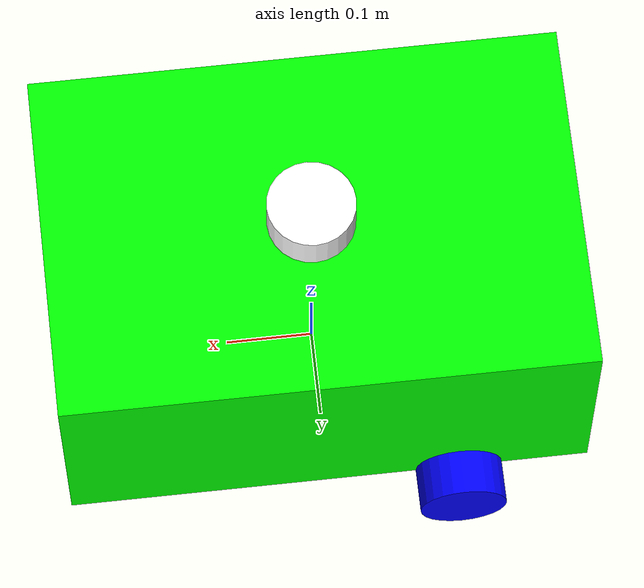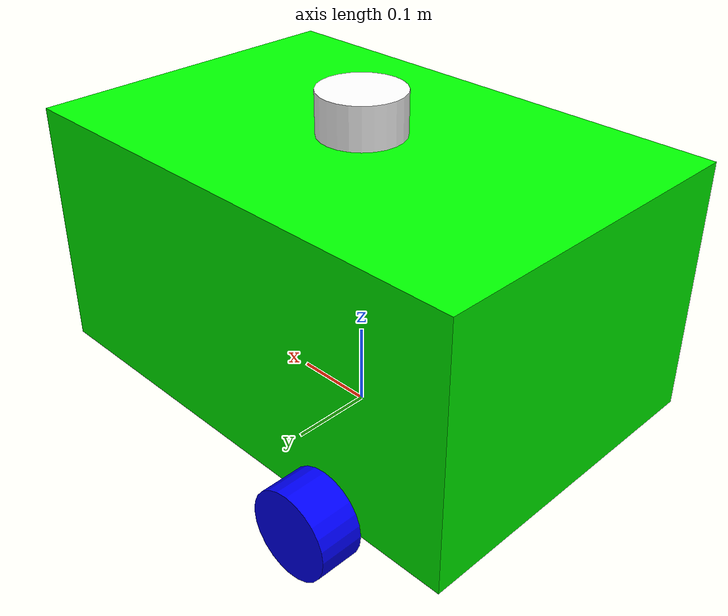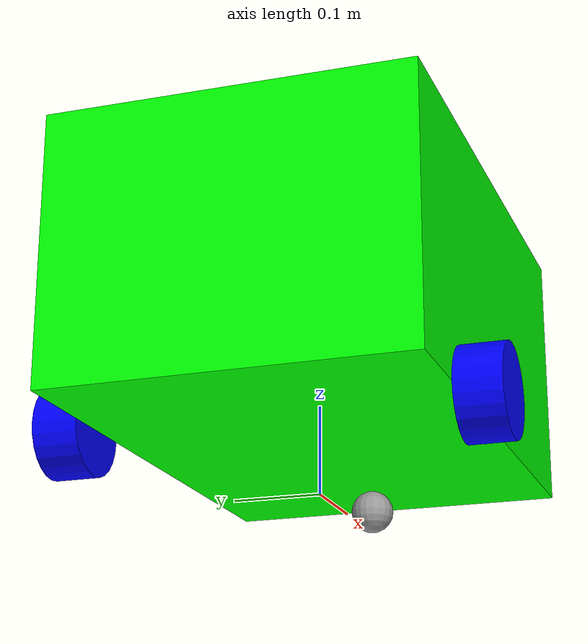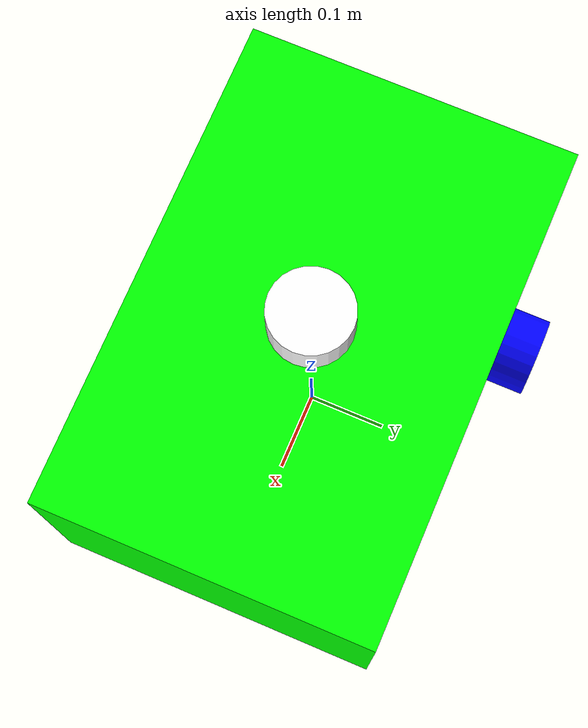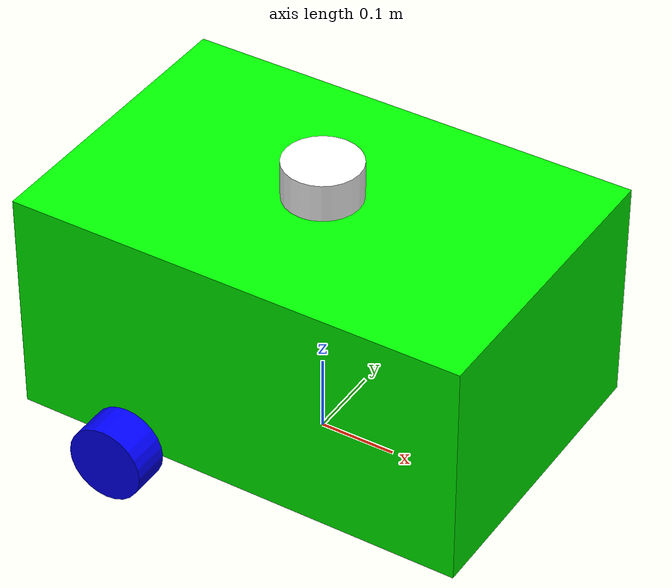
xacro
<?xml version="1.0"?>
<robot name="my_robot" xmlns:xacro="http://ros.org/wiki/xacro">

    <xacro:include filename="colors_materials.xacro"/>
    <xacro:include filename="my_robot_physics.xacro"/>
    <xacro:include filename="gazebo_data.xacro"/>
    <xacro:include filename="my_robot_structure.xacro"/>
</robot>

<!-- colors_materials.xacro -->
<robot xmlns:xacro="http://ros.org/wiki/xacro">

    <material name="green">
        <color rgba="0 1 0 1" />
    </material>

    <material name="grey">
        <color rgba="0.6 0.6 0.6 1" />
    </material>

    <material name="white">
        <color rgba="1 1 1 1" />
    </material>

    <material name="blue">
        <color rgba="0 0 1 1" />
    </material>

    <material name="orange">
        <color rgba="1 0.6 0 1" />
    </material>

    <material name="yellow">
        <color rgba="1 1 0 1" />
    </material>
</robot>

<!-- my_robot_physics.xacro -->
<robot xmlns:xacro="http://ros.org/wiki/xacro">
    <xacro:macro name="box_inertia" params="m l w h xyz rpy">
        <inertial>
            <origin xyz="${xyz}" rpy="${rpy}" />

            <mass value="${m}" />

            <inertia ixx="${(m/12)*(h*h + l*l)}" ixy="0.0" ixz="0.0"
                     iyy="${(m/12)*(w*w + l*l)}" iyz="0.0"
                     izz="${(m/12)*(w*w + h*h)}"/>

        </inertial>
    </xacro:macro>

    <xacro:macro name="cylinder_inertia" params="m r h xyz rpy">
        <inertial>
            <origin xyz="${xyz}" rpy="${rpy}" />

            <mass value="${m}" />

            <inertia ixx="${(m/12)*(3*(r*r) + h*h)}" ixy="0.0" ixz="0.0"
                     iyy="${(m/12)*(3*(r*r) + h*h)}" iyz="0.0"
                     izz="${(m/2)*(r*r)}"/>

        </inertial>
    </xacro:macro>

    <xacro:macro name="sphere_inertia" params="m r xyz rpy">
        <inertial>
            <origin xyz="${xyz}" rpy="${rpy}" />

            <mass value="${m}" />

            <inertia ixx="${((2*m) / 5) * (r*r)}" ixy="0.0" ixz="0.0"
                     iyy="${((2*m) / 5) * (r*r)}" iyz="0.0"
                     izz="${((2*m) / 5) * (r*r)}"/>

        </inertial>
    </xacro:macro>
</robot>

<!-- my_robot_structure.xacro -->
<robot xmlns:xacro="http://ros.org/wiki/xacro">

    <xacro:property name="base_length" value="0.6"/>
    <xacro:property name="base_width" value="0.4"/>
    <xacro:property name="base_height" value="0.3"/>
    <xacro:property name="wheel_rad" value="0.05"/>
    <xacro:property name="wheel_length" value="0.05"/>

    <link name="base_footprint" />

    <link name="base_link">
        <visual>
            <geometry>
                <box size="${base_length} ${base_width} ${base_height}" />
            </geometry>
            <origin xyz="0 0 ${base_height / 2.0}" rpy="0 0 0" />
            <material name="green"/>
        </visual>
        <collision>
            <geometry>
                <box size="${base_length} ${base_width} ${base_height}" />
            </geometry>
            <origin xyz="0 0 ${base_height / 2.0}" rpy="0 0 0" />
        </collision>

        <xacro:box_inertia m="2.0" l="${base_length}" w="${base_width}" h="${base_height}"
                            xyz="0 0 ${base_height / 2.0}" rpy="0 0 0" />
    </link>

    <joint name="base_footprint" type="fixed">
        <parent link="base_footprint" />
        <child link="base_link" />
        <origin xyz="0 0 ${wheel_rad}" rpy="0 0 0" />
    </joint>

    <link name="lidar_link">
        <visual>
            <geometry>
                <cylinder radius="${wheel_rad}" length="${wheel_length}" />
            </geometry>
            <origin xyz="0 0 0" rpy="0 0 0" />
            <material name="white"/>
        </visual>
        <collision>
            <geometry>
                <cylinder radius="${wheel_rad}" length="${wheel_length}" />
            </geometry>
            <origin xyz="0 0 0" rpy="0 0 0" />
        </collision>
        <xacro:cylinder_inertia m="1.0" r="${wheel_rad}" h="${wheel_length}" xyz="0 0 0" rpy="0 0 0" />
    </link>

    <joint name="base_lidar_joint" type="fixed">
        <parent link="base_link" />
        <child link="lidar_link" />
        <origin xyz="0 0 ${base_height + (wheel_length/2.0)}" rpy="0 0 0" />
    </joint>

    <xacro:macro name="wheel_link" params="prefix">
        <link name="${prefix}_wheel_link">
            <visual>
                <geometry>
                    <cylinder radius="${wheel_rad}" length="${wheel_length}" />
                </geometry>
                <origin xyz="0 0 0" rpy="${pi / 2.0} 0 0" />
                <material name="blue"/>
            </visual>
            <collision>
                <geometry>
                    <cylinder radius="${wheel_rad}" length="${wheel_length}" />
                </geometry>
                <origin xyz="0 0 0" rpy="${pi / 2.0} 0 0" />
            </collision>
            <xacro:cylinder_inertia m="1.0" r="${wheel_rad}" h="${wheel_length}" xyz="0 0 0" rpy="${pi / 2.0} 0 0" />
        </link>
    </xacro:macro>

    <xacro:wheel_link prefix="right"/>
    <xacro:wheel_link prefix="left"/>

    <joint name="base_left_wheel_joint" type="continuous">
        <parent link="base_link" />
        <child link="left_wheel_link" />
        <origin xyz="${-base_length / 4.0} ${(base_width / 2.0) + (wheel_length/2.0)} 0" rpy="0 0 0" />
        <axis xyz="0 1 0" />
    </joint>

    <joint name="base_right_wheel_joint" type="continuous">
        <parent link="base_link" />
        <child link="right_wheel_link" />
        <origin xyz="${-base_length / 4.0} ${-((base_width + wheel_length)/2.0)} 0" rpy="0 0 0" />
        <axis xyz="0 1 0" />
    </joint>

    <link name="castor_wheel_link">
        <visual>
            <geometry>
                <sphere radius="${wheel_rad / 2.0}"/>
            </geometry>
            <origin xyz="0 0 0" rpy="0 0 0" />
            <material name="grey"/>
        </visual>
        <collision>
            <geometry>
                <sphere radius="${wheel_rad / 2.0}"/>
            </geometry>
            <origin xyz="0 0 0" rpy="0 0 0" />
        </collision>
        <xacro:sphere_inertia m="0.5" r="${wheel_rad / 2.0}" xyz="0 0 0" rpy="0 0 0" />
    </link>

    <joint name="base_castor_wheel_joint" type="fixed">
        <parent link="base_link" />
        <child link="castor_wheel_link" />
        <origin xyz="${base_length / 3.0} 0 ${-(wheel_rad / 2.0)}" rpy="0 0 0" />
    </joint>

</robot>
